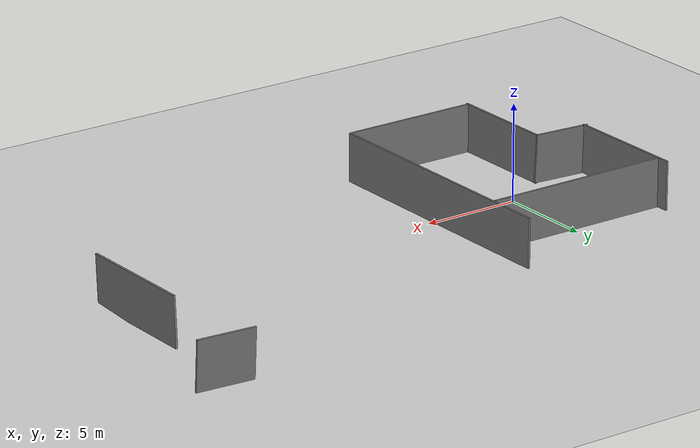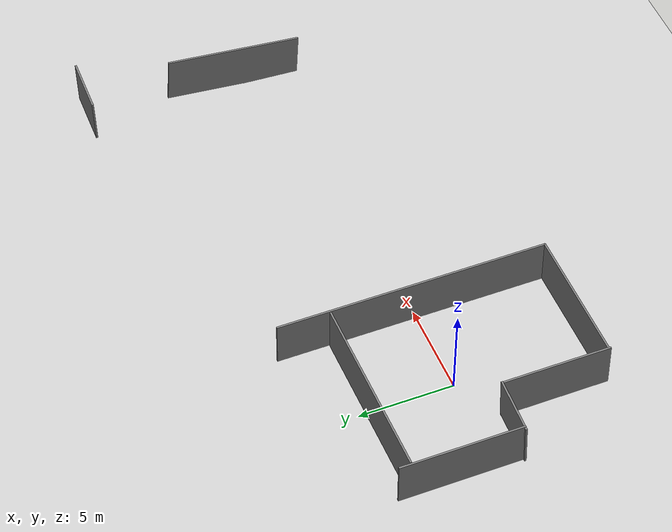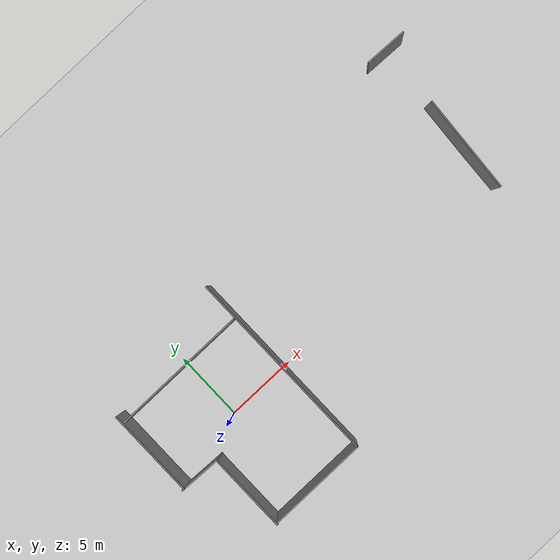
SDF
<sdf version="1.7">
 <world name="default">
  <light name="sun" type="directional">
   <pose>0 0 10 0 -0 0</pose>
   <diffuse>0.8 0.8 0.8 1</diffuse>
   <specular>0.2 0.2 0.2 1</specular>
   <attenuation>
    <range>1000</range>
    <constant>0.9</constant>
    <linear>0.01</linear>
    <quadratic>0.001</quadratic>
   </attenuation>
   <direction>-0.5 0.1 -0.9</direction>
   <spot><inner_angle>0</inner_angle><outer_angle>0</outer_angle><falloff>0</falloff></spot>
  </light>
  <model name="ground_plane">
   <static>1</static>
   <link name="link">
    <collision name="collision">
     <geometry><plane><normal>0 0 1</normal><size>100 100</size></plane></geometry>
     <surface>
      <contact><collide_bitmask>65535</collide_bitmask></contact>
      <friction><ode><mu>100</mu><mu2>50</mu2></ode></friction>
     </surface>
    </collision>
    <visual name="visual">
     <cast_shadows>0</cast_shadows>
     <geometry><plane><normal>0 0 1</normal><size>100 100</size></plane></geometry>
     <material>
      <script><uri>file://media/materials/scripts/gazebo.material</uri><name>Gazebo/Grey</name></script>
     </material>
    </visual>
   </link>
  </model>
  <model name="wall_north">
   <static>1</static>
   <link name="link">
    <collision name="collision"><geometry><box><size>9.76227 0.1 2.5</size></box></geometry></collision>
    <visual name="visual">
     <geometry><box><size>9.76227 0.1 2.5</size></box></geometry>
     <material><ambient>0.5 0.5 0.5 1</ambient><diffuse>0.5 0.5 0.5 1</diffuse></material>
    </visual>
   </link>
   <pose>-0.286002 4.55626 1.25 0 -0 0</pose>
  </model>
  <model name="wall_south">
   <static>1</static>
   <link name="link">
    <collision name="collision"><geometry><box><size>7.10828 0.1 2.5</size></box></geometry></collision>
    <visual name="visual">
     <geometry><box><size>7.10828 0.1 2.5</size></box></geometry>
     <material><ambient>0.5 0.5 0.5 1</ambient><diffuse>0.5 0.5 0.5 1</diffuse></material>
    </visual>
   </link>
   <pose>1.10819 -6.86203 1.25 0 -0 0</pose>
  </model>
  <model name="wall_east">
   <static>1</static>
   <link name="link">
    <collision name="collision"><geometry><box><size>0.1 14.2192 2.5</size></box></geometry></collision>
    <visual name="visual">
     <geometry><box><size>0.1 14.2192 2.5</size></box></geometry>
     <material><ambient>0.5 0.5 0.5 1</ambient><diffuse>0.5 0.5 0.5 1</diffuse></material>
    </visual>
   </link>
   <pose>4.6757 0.207444 1.25 0.001147 -0 0</pose>
  </model>
  <model name="wall_west">
   <static>1</static>
   <link name="link">
    <collision name="collision"><geometry><box><size>0.1 6.4344 2.5</size></box></geometry></collision>
    <visual name="visual">
     <geometry><box><size>0.1 6.4344 2.5</size></box></geometry>
     <material><ambient>0.5 0.5 0.5 1</ambient><diffuse>0.5 0.5 0.5 1</diffuse></material>
    </visual>
   </link>
   <pose>-5.2472 1.98462 1.25 0 -0 0</pose>
  </model>
  <gravity>0 0 -9.8</gravity>
  <magnetic_field>6e-06 2.3e-05 -4.2e-05</magnetic_field>
  <atmosphere type="adiabatic"/>
  <physics type="ode">
   <max_step_size>0.001</max_step_size>
   <real_time_factor>1</real_time_factor>
   <real_time_update_rate>1000</real_time_update_rate>
  </physics>
  <scene><ambient>0.4 0.4 0.4 1</ambient><background>0.7 0.7 0.7 1</background><shadows>1</shadows></scene>
  <spherical_coordinates>
   <surface_model>EARTH_WGS84</surface_model>
   <latitude_deg>0</latitude_deg>
   <longitude_deg>0</longitude_deg>
   <elevation>0</elevation>
   <heading_deg>0</heading_deg>
  </spherical_coordinates>
  <model name="wall_east_clone">
   <static>1</static>
   <link name="link">
    <collision name="collision"><geometry><box><size>0.1 3.01135 2.5</size></box></geometry></collision>
    <visual name="visual">
     <geometry><box><size>0.1 3.01135 2.5</size></box></geometry>
     <material><ambient>0.5 0.5 0.5 1</ambient><diffuse>0.5 0.5 0.5 1</diffuse></material>
    </visual>
   </link>
   <pose>23.6776 10.4766 1.25 -0.019398 0.038145 1.53431</pose>
  </model>
  <model name="wall_east_clone_clone">
   <static>1</static>
   <link name="link">
    <collision name="collision"><geometry><box><size>0.1 3.01135 2.5</size></box></geometry></collision>
    <visual name="visual">
     <geometry><box><size>0.1 3.01135 2.5</size></box></geometry>
     <material><ambient>0.5 0.5 0.5 1</ambient><diffuse>0.5 0.5 0.5 1</diffuse></material>
    </visual>
   </link>
   <pose>-3.90683 -1.28299 1.25 -0.019398 0.038145 1.53431</pose>
  </model>
  <model name="wall_west_clone">
   <static>1</static>
   <link name="link">
    <collision name="collision"><geometry><box><size>0.1 5.65641 2.5</size></box></geometry></collision>
    <visual name="visual">
     <geometry><box><size>0.1 5.65641 2.5</size></box></geometry>
     <material><ambient>0.5 0.5 0.5 1</ambient><diffuse>0.5 0.5 0.5 1</diffuse></material>
    </visual>
   </link>
   <pose>-2.47517 -4.15965 1.25 0 -0 0</pose>
  </model>
  <model name="wall_south_clone">
   <static>1</static>
   <link name="link">
    <collision name="collision"><geometry><box><size>7.10828 0.1 2.5</size></box></geometry></collision>
    <visual name="visual">
     <geometry><box><size>7.10828 0.1 2.5</size></box></geometry>
     <material><ambient>0.5 0.5 0.5 1</ambient><diffuse>0.5 0.5 0.5 1</diffuse></material>
    </visual>
   </link>
   <pose>23.1363 2.51106 1.25 0.004381 -0.051369 1.5073</pose>
  </model>
 </world>
</sdf>
